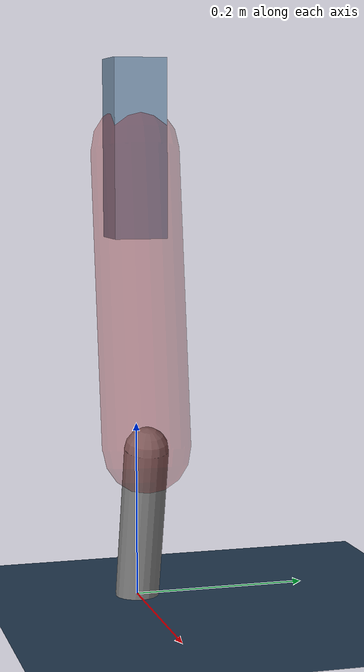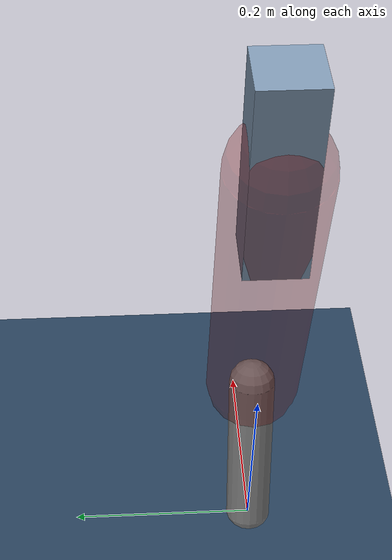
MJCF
<mujoco model="Hopper2D">
	<compiler inertiafromgeom="true" angle="radian" />
	<option timestep="0.001" integrator="implicit" cone="elliptic" solver="Newton" tolerance="1e-10" />

	<default>
		<geom contype="1" conaffinity="1" condim="3" friction="2 0.005 0.0001" solref="0.005 1" />
		<joint limited="true" damping="0.1" />
	</default>

	<asset>
		<texture name="skybox" type="skybox" builtin="gradient" rgb1=".4 .6 .8" rgb2="0 0 0" width="800" height="800" />
		<texture name="grid" type="2d" builtin="checker" rgb1=".1 .2 .3" rgb2=".2 .3 .4" width="300" height="300" mark="edge" markrgb=".2 .3 .4" />
		<material name="ground" texture="grid" texrepeat="1 1" texuniform="true" reflectance="0.1" />
		<material name="leg" rgba="0.5 0.6 0.7 1" />
	</asset>

	<worldbody>

		<geom name="floor" type="plane" size="5 5 0.25" material="ground" />

		<light directional="false" diffuse="0.8 0.8 0.8" specular="0.3 0.3 0.3" pos="0 0 2" dir="0 0 -1" />
		<light mode="targetbodycom" target="base" directional="false" diffuse="0.8 0.8 0.8" specular="0.3 0.3 0.3" pos="0 0 2" dir="0 0 -1" />

		<camera name="fixed" pos="0 -2 1" xyaxes="1 0 0 0 0 1" />
		<camera name="tracking" mode="trackcom" pos="0 -3 1" />

		<body name="root" pos="0 0 0.5130186776033093">
			<joint name="slide_x" type="slide" axis="1 0 0" range="-100 100" />
			<joint name="slide_z" type="slide" axis="0 0 1" range="0 10" />

			<body name="base" pos="0 0 0">
				<geom name="torso" type="box" size="0.03 0.03 0.1" mass="2.6580000000000004" material="leg" />

				<body name="link1" pos="0 0 0" euler="0 1.42628728981643 0">
					<joint type="hinge" axis="0 -1 0" pos="0 0 0" name="hinge1" limited="true" range="-3.14 3.14" stiffness="0" damping="0.1" />
					<geom name="thigh" type="capsule" fromto="0 0 0 0.3375300802008658 0 0" size="0.05" rgba="0.5 0 0 0.3" mass="1.091784224562424" />

					<body name="link2" pos="0.3375300802008658 0 0" euler="0 0.40965079961880935 0">
						<joint type="hinge" axis="0 -1 0" pos="0 0 0" name="hinge2" limited="true" range="-3.14 3.14" stiffness="0" damping="0.1" />
						<geom name="shank" type="capsule" fromto="0 0 0 0.18548859740244356 0 0" size="0.025" mass="0.38859087792195485" />

					</body>
				</body>
			</body>
		</body>
	</worldbody>

	<actuator>
		<motor name="torque1" joint="hinge1" ctrlrange="-9.55060834991147 9.55060834991147" ctrllimited="true" gear="1" />
		<motor name="torque2" joint="hinge2" ctrlrange="-199.24063964136235 199.24063964136235" ctrllimited="true" gear="1" />
	</actuator>
</mujoco>
